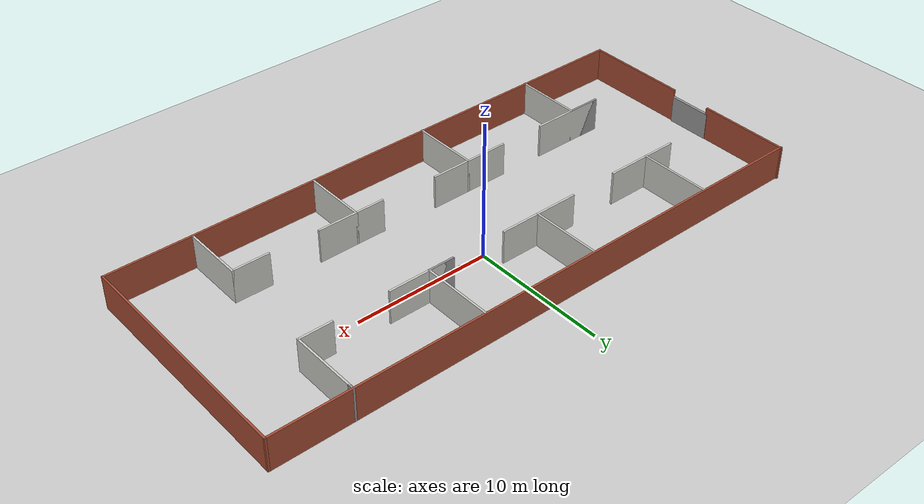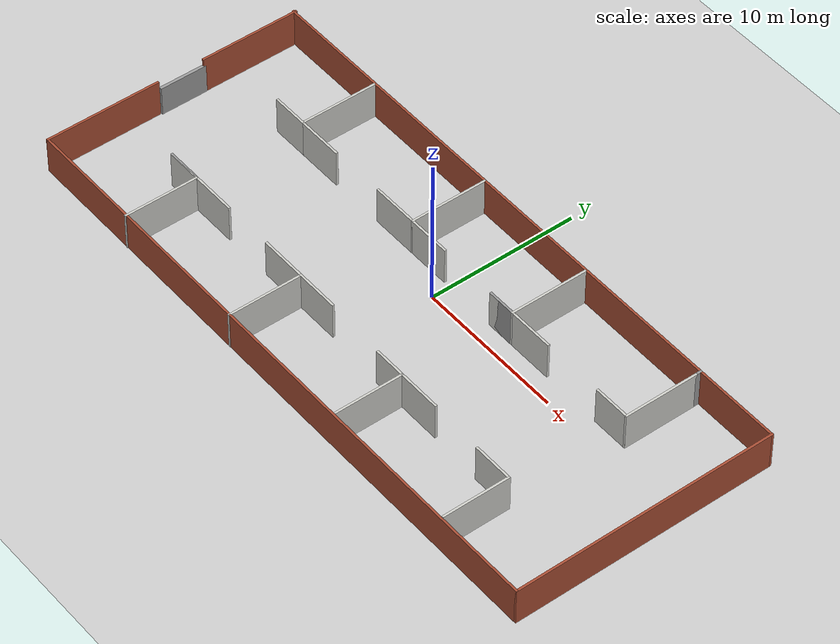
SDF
<sdf version="1.6">
 <world name="__default__">
  <light name="sun" type="directional">
   <pose>0 0 10 0 -0 0</pose>
   <diffuse>0.8 0.8 0.8 1</diffuse>
   <specular>0.2 0.2 0.2 1</specular>
   <attenuation>
    <range>1000</range>
    <constant>0.9</constant>
    <linear>0.01</linear>
    <quadratic>0.001</quadratic>
   </attenuation>
   <direction>-0.5 0.1 -0.9</direction>
   <spot><inner_angle>0</inner_angle><outer_angle>0</outer_angle><falloff>0</falloff></spot>
  </light>
  <model name="ground_plane">
   <static>1</static>
   <link name="ground_plane::link">
    <collision name="collision">
     <geometry><plane><normal>0 0 1</normal><size>100 100</size></plane></geometry>
     <surface><friction><ode><mu>100</mu><mu2>50</mu2></ode></friction></surface>
    </collision>
    <visual name="visual">
     <cast_shadows>0</cast_shadows>
     <geometry><plane><normal>0 0 1</normal><size>100 100</size></plane></geometry>
     <material>
      <script><uri>file://media/materials/scripts/gazebo.material</uri><name>Gazebo/Grey</name></script>
     </material>
    </visual>
   </link>
  </model>
  <gravity>0 0 -9.8</gravity>
  <magnetic_field>6e-06 2.3e-05 -4.2e-05</magnetic_field>
  <atmosphere type="adiabatic"/>
  <physics type="ode">
   <max_step_size>0.001</max_step_size>
   <real_time_factor>1</real_time_factor>
   <real_time_update_rate>1000</real_time_update_rate>
  </physics>
  <scene><ambient>0.4 0.4 0.4 1</ambient><background>0.7 0.7 0.7 1</background><shadows>1</shadows></scene>
  <spherical_coordinates>
   <surface_model>EARTH_WGS84</surface_model>
   <latitude_deg>0</latitude_deg>
   <longitude_deg>0</longitude_deg>
   <elevation>0</elevation>
   <heading_deg>0</heading_deg>
  </spherical_coordinates>
  <model name="ball_chaser.world">
   <pose>-0.2084 -2.20328 0 0 -0 0</pose>
   <link name="Door_0">
    <collision name="Door_0_Collision">
     <geometry><box><size>3.17653 0.2 2</size></box></geometry>
     <pose>0 0 1 0 -0 0</pose>
    </collision>
    <visual name="Door_0_Visual">
     <pose>0 0 1 0 -0 0</pose>
     <geometry><box><size>3.17653 0.2 2</size></box></geometry>
     <material>
      <script><uri>file://media/materials/scripts/gazebo.material</uri><name>Gazebo/Grey</name></script>
     </material>
    </visual>
    <pose>-20.8635 0.615278 0 0 -0 1.57044</pose>
   </link>
   <link name="Wall_1">
    <collision name="Wall_1_Collision">
     <geometry><box><size>6.75 0.15 2.5</size></box></geometry>
     <pose>0 0 1.25 0 -0 0</pose>
    </collision>
    <visual name="Wall_1_Visual">
     <pose>0 0 1.25 0 -0 0</pose>
     <geometry><box><size>6.75 0.15 2.5</size></box></geometry>
     <material>
      <script><uri>file://media/materials/scripts/gazebo.material</uri><name>Gazebo/Bricks</name></script>
      <ambient>1 1 1 1</ambient>
     </material>
     <meta><layer>0</layer></meta>
    </visual>
    <pose>-20.8635 5.43696 0 0 -0 -1.5708</pose>
   </link>
   <link name="Wall_12">
    <collision name="Wall_12_Collision">
     <geometry><box><size>3.25 0.15 2.5</size></box></geometry>
     <pose>0 0 1.25 0 -0 0</pose>
    </collision>
    <visual name="Wall_12_Visual">
     <pose>0 0 1.25 0 -0 0</pose>
     <geometry><box><size>3.25 0.15 2.5</size></box></geometry>
     <material>
      <script><uri>file://media/materials/scripts/gazebo.material</uri><name>Gazebo/CeilingTiled</name></script>
      <ambient>1 1 1 1</ambient>
     </material>
     <meta><layer>0</layer></meta>
    </visual>
    <pose>-11.6225 3.45237 0 0 -0 0</pose>
   </link>
   <link name="Wall_19">
    <collision name="Wall_19_Collision">
     <geometry><box><size>3.25 0.15 2.5</size></box></geometry>
     <pose>0 0 1.25 0 -0 0</pose>
    </collision>
    <visual name="Wall_19_Visual">
     <pose>0 0 1.25 0 -0 0</pose>
     <geometry><box><size>3.25 0.15 2.5</size></box></geometry>
     <material>
      <script><uri>file://media/materials/scripts/gazebo.material</uri><name>Gazebo/CeilingTiled</name></script>
      <ambient>1 1 1 1</ambient>
     </material>
     <meta><layer>0</layer></meta>
    </visual>
    <pose>-4.73137 3.50709 0 0 -0 0</pose>
   </link>
   <link name="Wall_20">
    <collision name="Wall_20_Collision">
     <geometry><box><size>5.25 0.15 2.5</size></box></geometry>
     <pose>0 0 1.25 0 -0 0</pose>
    </collision>
    <visual name="Wall_20_Visual">
     <pose>0 0 1.25 0 -0 0</pose>
     <geometry><box><size>5.25 0.15 2.5</size></box></geometry>
     <material>
      <script><uri>file://media/materials/scripts/gazebo.material</uri><name>Gazebo/CeilingTiled</name></script>
      <ambient>1 1 1 1</ambient>
     </material>
     <meta><layer>0</layer></meta>
    </visual>
    <pose>-3.18136 6.05709 0 0 -0 1.5708</pose>
   </link>
   <link name="Wall_22">
    <collision name="Wall_22_Collision">
     <geometry><box><size>3 0.15 2.5</size></box></geometry>
     <pose>0 0 1.25 0 -0 0</pose>
    </collision>
    <visual name="Wall_22_Visual">
     <pose>0 0 1.25 0 -0 0</pose>
     <geometry><box><size>3 0.15 2.5</size></box></geometry>
     <material>
      <script><uri>file://media/materials/scripts/gazebo.material</uri><name>Gazebo/CeilingTiled</name></script>
      <ambient>1 1 1 1</ambient>
     </material>
     <meta><layer>0</layer></meta>
    </visual>
    <pose>-1.75636 3.50709 0 0 -0 0</pose>
   </link>
   <link name="Wall_24">
    <collision name="Wall_24_Collision">
     <geometry><box><size>5.25 0.15 2.5</size></box></geometry>
     <pose>0 0 1.25 0 -0 0</pose>
    </collision>
    <visual name="Wall_24_Visual">
     <pose>0 0 1.25 0 -0 0</pose>
     <geometry><box><size>5.25 0.15 2.5</size></box></geometry>
     <material>
      <script><uri>file://media/materials/scripts/gazebo.material</uri><name>Gazebo/CeilingTiled</name></script>
      <ambient>1 1 1 1</ambient>
     </material>
     <meta><layer>0</layer></meta>
    </visual>
    <pose>5.65504 6.00237 0 0 -0 -1.5708</pose>
   </link>
   <link name="Wall_25">
    <collision name="Wall_25_Collision">
     <geometry><box><size>2 0.15 2.5</size></box></geometry>
     <pose>0 0 1.25 0 -0 0</pose>
    </collision>
    <visual name="Wall_25_Visual">
     <pose>0 0 1.25 0 -0 0</pose>
     <geometry><box><size>2 0.15 2.5</size></box></geometry>
     <material>
      <script><uri>file://media/materials/scripts/gazebo.material</uri><name>Gazebo/Grey</name></script>
      <ambient>1 1 1 1</ambient>
     </material>
     <meta><layer>0</layer></meta>
    </visual>
    <pose>4.73004 3.45237 0 0 -0 3.14159</pose>
   </link>
   <link name="Wall_26">
    <collision name="Wall_26_Collision">
     <geometry><box><size>5 0.15 2.5</size></box></geometry>
     <pose>0 0 1.25 0 -0 0</pose>
    </collision>
    <visual name="Wall_26_Visual">
     <pose>0 0 1.25 0 -0 0</pose>
     <geometry><box><size>5 0.15 2.5</size></box></geometry>
     <material>
      <script><uri>file://media/materials/scripts/gazebo.material</uri><name>Gazebo/CeilingTiled</name></script>
      <ambient>1 1 1 1</ambient>
     </material>
     <meta><layer>0</layer></meta>
    </visual>
    <pose>6.23004 3.45237 0 0 -0 0</pose>
   </link>
   <link name="Wall_3">
    <collision name="Wall_3_Collision">
     <geometry><box><size>7.75 0.15 2.5</size></box></geometry>
     <pose>0 0 1.25 0 -0 0</pose>
    </collision>
    <visual name="Wall_3_Visual">
     <pose>0 0 1.25 0 -0 0</pose>
     <geometry><box><size>7.75 0.15 2.5</size></box></geometry>
     <material>
      <script><uri>file://media/materials/scripts/gazebo.material</uri><name>Gazebo/Bricks</name></script>
      <ambient>1 1 1 1</ambient>
     </material>
     <meta><layer>0</layer></meta>
    </visual>
    <pose>-20.925 -4.9075 0 0 -0 -1.5708</pose>
   </link>
   <link name="Wall_31">
    <collision name="Wall_31_Collision">
     <geometry><box><size>2.5 0.15 2.5</size></box></geometry>
     <pose>0 0 1.25 0 -0 0</pose>
    </collision>
    <visual name="Wall_31_Visual">
     <pose>0 0 1.25 0 -0 0</pose>
     <geometry><box><size>2.5 0.15 2.5</size></box></geometry>
     <material>
      <script><uri>file://media/materials/scripts/gazebo.material</uri><name>Gazebo/CeilingTiled</name></script>
      <ambient>1 1 1 1</ambient>
     </material>
     <meta><layer>0</layer></meta>
    </visual>
    <pose>14.0288 3.44556 0 0 -0 0</pose>
   </link>
   <link name="Wall_32">
    <collision name="Wall_32_Collision">
     <geometry><box><size>5 0.15 2.5</size></box></geometry>
     <pose>0 0 1.25 0 -0 0</pose>
    </collision>
    <visual name="Wall_32_Visual">
     <pose>0 0 1.25 0 -0 0</pose>
     <geometry><box><size>5 0.15 2.5</size></box></geometry>
     <material>
      <script><uri>file://media/materials/scripts/gazebo.material</uri><name>Gazebo/CeilingTiled</name></script>
      <ambient>1 1 1 1</ambient>
     </material>
     <meta><layer>0</layer></meta>
    </visual>
    <pose>15.2038 5.87056 0 0 -0 1.5708</pose>
   </link>
   <link name="Wall_33">
    <collision name="Wall_33_Collision">
     <geometry><box><size>0.5 0.15 2.5</size></box></geometry>
     <pose>0 0 1.25 0 -0 0</pose>
    </collision>
    <visual name="Wall_33_Visual">
     <pose>0 0 1.25 0 -0 0</pose>
     <geometry><box><size>0.5 0.15 2.5</size></box></geometry>
     <material>
      <script><uri>file://media/materials/scripts/gazebo.material</uri><name>Gazebo/Grey</name></script>
      <ambient>1 1 1 1</ambient>
     </material>
     <meta><layer>0</layer></meta>
    </visual>
    <pose>15.2038 8.47056 0 0 -0 1.5708</pose>
   </link>
   <link name="Wall_35">
    <collision name="Wall_35_Collision">
     <geometry><box><size>5 0.15 2.5</size></box></geometry>
     <pose>0 0 1.25 0 -0 0</pose>
    </collision>
    <visual name="Wall_35_Visual">
     <pose>0 0 1.25 0 -0 0</pose>
     <geometry><box><size>5 0.15 2.5</size></box></geometry>
     <material>
      <script><uri>file://media/materials/scripts/gazebo.material</uri><name>Gazebo/CeilingTiled</name></script>
      <ambient>1 1 1 1</ambient>
     </material>
     <meta><layer>0</layer></meta>
    </visual>
    <pose>-13.2955 -6.31196 0 0 -0 1.5708</pose>
   </link>
   <link name="Wall_36">
    <collision name="Wall_36_Collision">
     <geometry><box><size>2.5 0.15 2.5</size></box></geometry>
     <pose>0 0 1.25 0 -0 0</pose>
    </collision>
    <visual name="Wall_36_Visual">
     <pose>0 0 1.25 0 -0 0</pose>
     <geometry><box><size>2.5 0.15 2.5</size></box></geometry>
     <material>
      <script><uri>file://media/materials/scripts/gazebo.material</uri><name>Gazebo/Grey</name></script>
      <ambient>1 1 1 1</ambient>
     </material>
     <meta><layer>0</layer></meta>
    </visual>
    <pose>-14.4705 -3.88696 0 0 -0 3.14159</pose>
   </link>
   <link name="Wall_37">
    <collision name="Wall_37_Collision">
     <geometry><box><size>5.5 0.15 2.5</size></box></geometry>
     <pose>0 0 1.25 0 -0 0</pose>
    </collision>
    <visual name="Wall_37_Visual">
     <pose>0 0 1.25 0 -0 0</pose>
     <geometry><box><size>5.5 0.15 2.5</size></box></geometry>
     <material>
      <script><uri>file://media/materials/scripts/gazebo.material</uri><name>Gazebo/CeilingTiled</name></script>
      <ambient>1 1 1 1</ambient>
     </material>
     <meta><layer>0</layer></meta>
    </visual>
    <pose>-12.9705 -3.88696 0 0 -0 0</pose>
   </link>
   <link name="Wall_39">
    <collision name="Wall_39_Collision">
     <geometry><box><size>3.25 0.15 2.5</size></box></geometry>
     <pose>0 0 1.25 0 -0 0</pose>
    </collision>
    <visual name="Wall_39_Visual">
     <pose>0 0 1.25 0 -0 0</pose>
     <geometry><box><size>3.25 0.15 2.5</size></box></geometry>
     <material>
      <script><uri>file://media/materials/scripts/gazebo.material</uri><name>Gazebo/CeilingTiled</name></script>
      <ambient>1 1 1 1</ambient>
     </material>
     <meta><layer>0</layer></meta>
    </visual>
    <pose>-5.22359 -3.87626 0 0 -0 0</pose>
   </link>
   <link name="Wall_4">
    <collision name="Wall_4_Collision">
     <geometry><box><size>42 0.15 2.5</size></box></geometry>
     <pose>0 0 1.25 0 -0 0</pose>
    </collision>
    <visual name="Wall_4_Visual">
     <pose>0 0 1.25 0 -0 0</pose>
     <geometry><box><size>42 0.15 2.5</size></box></geometry>
     <material>
      <script><uri>file://media/materials/scripts/gazebo.material</uri><name>Gazebo/Bricks</name></script>
      <ambient>1 1 1 1</ambient>
     </material>
     <meta><layer>0</layer></meta>
    </visual>
    <pose>0 -8.7075 0 0 -0 0</pose>
   </link>
   <link name="Wall_40">
    <collision name="Wall_40_Collision">
     <geometry><box><size>5 0.15 2.5</size></box></geometry>
     <pose>0 0 1.25 0 -0 0</pose>
    </collision>
    <visual name="Wall_40_Visual">
     <pose>0 0 1.25 0 -0 0</pose>
     <geometry><box><size>5 0.15 2.5</size></box></geometry>
     <material>
      <script><uri>file://media/materials/scripts/gazebo.material</uri><name>Gazebo/CeilingTiled</name></script>
      <ambient>1 1 1 1</ambient>
     </material>
     <meta><layer>0</layer></meta>
    </visual>
    <pose>-3.67359 -6.30126 0 0 -0 -1.5708</pose>
   </link>
   <link name="Wall_43">
    <collision name="Wall_43_Collision">
     <geometry><box><size>3 0.15 2.5</size></box></geometry>
     <pose>0 0 1.25 0 -0 0</pose>
    </collision>
    <visual name="Wall_43_Visual">
     <pose>0 0 1.25 0 -0 0</pose>
     <geometry><box><size>3 0.15 2.5</size></box></geometry>
     <material>
      <script><uri>file://media/materials/scripts/gazebo.material</uri><name>Gazebo/CeilingTiled</name></script>
      <ambient>1 1 1 1</ambient>
     </material>
     <meta><layer>0</layer></meta>
    </visual>
    <pose>-2.24859 -3.87626 0 0 -0 0</pose>
   </link>
   <link name="Wall_45">
    <collision name="Wall_45_Collision">
     <geometry><box><size>2.25 0.15 2.5</size></box></geometry>
     <pose>0 0 1.25 0 -0 0</pose>
    </collision>
    <visual name="Wall_45_Visual">
     <pose>0 0 1.25 0 -0 0</pose>
     <geometry><box><size>2.25 0.15 2.5</size></box></geometry>
     <material>
      <script><uri>file://media/materials/scripts/gazebo.material</uri><name>Gazebo/CeilingTiled</name></script>
      <ambient>1 1 1 1</ambient>
     </material>
     <meta><layer>0</layer></meta>
    </visual>
    <pose>4.49004 -4.06084 0 0 -0 0</pose>
   </link>
   <link name="Wall_46">
    <collision name="Wall_46_Collision">
     <geometry><box><size>4.75 0.15 2.5</size></box></geometry>
     <pose>0 0 1.25 0 -0 0</pose>
    </collision>
    <visual name="Wall_46_Visual">
     <pose>0 0 1.25 0 -0 0</pose>
     <geometry><box><size>4.75 0.15 2.5</size></box></geometry>
     <material>
      <script><uri>file://media/materials/scripts/gazebo.material</uri><name>Gazebo/CeilingTiled</name></script>
      <ambient>1 1 1 1</ambient>
     </material>
     <meta><layer>0</layer></meta>
    </visual>
    <pose>5.54004 -6.36084 0 0 -0 -1.5708</pose>
   </link>
   <link name="Wall_48">
    <collision name="Wall_48_Collision">
     <geometry><box><size>3 0.15 2.5</size></box></geometry>
     <pose>0 0 1.25 0 -0 0</pose>
    </collision>
    <visual name="Wall_48_Visual">
     <pose>0 0 1.25 0 -0 0</pose>
     <geometry><box><size>3 0.15 2.5</size></box></geometry>
     <material>
      <script><uri>file://media/materials/scripts/gazebo.material</uri><name>Gazebo/CeilingTiled</name></script>
      <ambient>1 1 1 1</ambient>
     </material>
     <meta><layer>0</layer></meta>
    </visual>
    <pose>6.96504 -4.06084 0 0 -0 0</pose>
   </link>
   <link name="Wall_5">
    <collision name="Wall_5_Collision">
     <geometry><box><size>17.5 0.15 2.5</size></box></geometry>
     <pose>0 0 1.25 0 -0 0</pose>
    </collision>
    <visual name="Wall_5_Visual">
     <pose>0 0 1.25 0 -0 0</pose>
     <geometry><box><size>17.5 0.15 2.5</size></box></geometry>
     <material>
      <script><uri>file://media/materials/scripts/gazebo.material</uri><name>Gazebo/Bricks</name></script>
      <ambient>1 1 1 1</ambient>
     </material>
     <meta><layer>0</layer></meta>
    </visual>
    <pose>20.925 -0.032502 0 0 -0 1.5708</pose>
   </link>
   <link name="Wall_50">
    <collision name="Wall_50_Collision">
     <geometry><box><size>2.75 0.15 2.5</size></box></geometry>
     <pose>0 0 1.25 0 -0 0</pose>
    </collision>
    <visual name="Wall_50_Visual">
     <pose>0 0 1.25 0 -0 0</pose>
     <geometry><box><size>2.75 0.15 2.5</size></box></geometry>
     <material>
      <script><uri>file://media/materials/scripts/gazebo.material</uri><name>Gazebo/CeilingTiled</name></script>
      <ambient>1 1 1 1</ambient>
     </material>
     <meta><layer>0</layer></meta>
    </visual>
    <pose>13.4155 -4.1839 0 0 -0 0</pose>
   </link>
   <link name="Wall_53">
    <collision name="Wall_53_Collision">
     <geometry><box><size>4.5 0.15 2.5</size></box></geometry>
     <pose>0 0 1.25 0 -0 0</pose>
    </collision>
    <visual name="Wall_53_Visual">
     <pose>0 0 1.25 0 -0 0</pose>
     <geometry><box><size>4.5 0.15 2.5</size></box></geometry>
     <material>
      <script><uri>file://media/materials/scripts/gazebo.material</uri><name>Gazebo/CeilingTiled</name></script>
      <ambient>1 1 1 1</ambient>
     </material>
     <meta><layer>0</layer></meta>
    </visual>
    <pose>14.7155 -6.3589 0 0 -0 -1.5708</pose>
   </link>
   <link name="Wall_6">
    <collision name="Wall_6_Collision">
     <geometry><box><size>42 0.15 2.5</size></box></geometry>
     <pose>0 0 1.25 0 -0 0</pose>
    </collision>
    <visual name="Wall_6_Visual">
     <pose>0 0 1.25 0 -0 0</pose>
     <geometry><box><size>42 0.15 2.5</size></box></geometry>
     <material>
      <script><uri>file://media/materials/scripts/gazebo.material</uri><name>Gazebo/Bricks</name></script>
      <ambient>1 1 1 1</ambient>
     </material>
     <meta><layer>0</layer></meta>
    </visual>
    <pose>0 8.6425 0 0 -0 3.14159</pose>
   </link>
   <link name="Wall_8">
    <collision name="Wall_8_Collision">
     <geometry><box><size>5.25 0.15 2.5</size></box></geometry>
     <pose>0 0 1.25 0 -0 0</pose>
    </collision>
    <visual name="Wall_8_Visual">
     <pose>0 0 1.25 0 -0 0</pose>
     <geometry><box><size>5.25 0.15 2.5</size></box></geometry>
     <material>
      <script><uri>file://media/materials/scripts/gazebo.material</uri><name>Gazebo/CeilingTiled</name></script>
      <ambient>1 1 1 1</ambient>
     </material>
     <meta><layer>0</layer></meta>
    </visual>
    <pose>-13.1725 6.00237 0 0 -0 -1.5708</pose>
   </link>
   <link name="Wall_9">
    <collision name="Wall_9_Collision">
     <geometry><box><size>2.5 0.15 2.5</size></box></geometry>
     <pose>0 0 1.25 0 -0 0</pose>
    </collision>
    <visual name="Wall_9_Visual">
     <pose>0 0 1.25 0 -0 0</pose>
     <geometry><box><size>2.5 0.15 2.5</size></box></geometry>
     <material>
      <script><uri>file://media/materials/scripts/gazebo.material</uri><name>Gazebo/CeilingTiled</name></script>
      <ambient>1 1 1 1</ambient>
     </material>
     <meta><layer>0</layer></meta>
    </visual>
    <pose>-14.3475 3.45237 0 0 -0 3.14159</pose>
   </link>
   <static>1</static>
  </model>
  <model name="my_ball">
   <link name="link_0">
    <inertial>
     <mass>1</mass>
     <inertia><ixx>0.1</ixx><ixy>0</ixy><ixz>0</ixz><iyy>0.1</iyy><iyz>0</iyz><izz>0.1</izz></inertia>
    </inertial>
    <visual name="visual">
     <geometry><sphere><radius>0.1</radius></sphere></geometry>
     <material>
      <lighting>1</lighting>
      <script><uri>file://media/materials/scripts/gazebo.material</uri><name>Gazebo/Grey</name></script>
      <shader type="pixel"><normal_map>__default__</normal_map></shader>
      <ambient>1 1 1 1</ambient>
      <diffuse>1 1 1 1</diffuse>
      <specular>1 1 1 1</specular>
      <emissive>1 1 1 1</emissive>
     </material>
    </visual>
    <collision name="collision">
     <geometry><sphere><radius>0.1</radius></sphere></geometry>
     <surface>
      <friction>
       <ode><mu>1</mu><mu2>1</mu2><fdir1>0 0 0</fdir1><slip1>0</slip1><slip2>0</slip2></ode>
       <torsional>
        <coefficient>1</coefficient>
        <patch_radius>0</patch_radius>
        <surface_radius>0</surface_radius>
        <use_patch_radius>1</use_patch_radius>
        <ode><slip>0</slip></ode>
       </torsional>
      </friction>
      <bounce><restitution_coefficient>0</restitution_coefficient><threshold>1e+06</threshold></bounce>
      <contact>
       <collide_without_contact>0</collide_without_contact>
       <collide_without_contact_bitmask>1</collide_without_contact_bitmask>
       <collide_bitmask>1</collide_bitmask>
       <ode>
        <soft_cfm>0</soft_cfm>
        <soft_erp>0.2</soft_erp>
        <kp>1e+13</kp>
        <kd>1</kd>
        <max_vel>0.01</max_vel>
        <min_depth>0</min_depth>
       </ode>
       <bullet>
        <split_impulse>1</split_impulse>
        <split_impulse_penetration_threshold>-0.01</split_impulse_penetration_threshold>
        <soft_cfm>0</soft_cfm>
        <soft_erp>0.2</soft_erp>
        <kp>1e+13</kp>
        <kd>1</kd>
       </bullet>
      </contact>
     </surface>
    </collision>
   </link>
   <static>0</static>
   <pose>1.94105 -0.068746 0.1 0 -0 0</pose>
  </model>
 </world>
</sdf>
